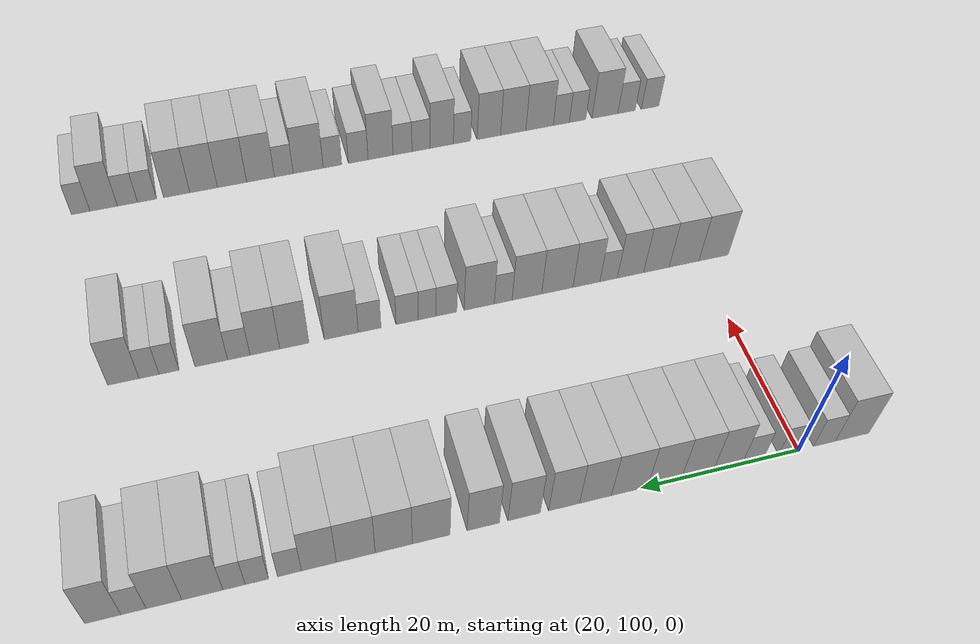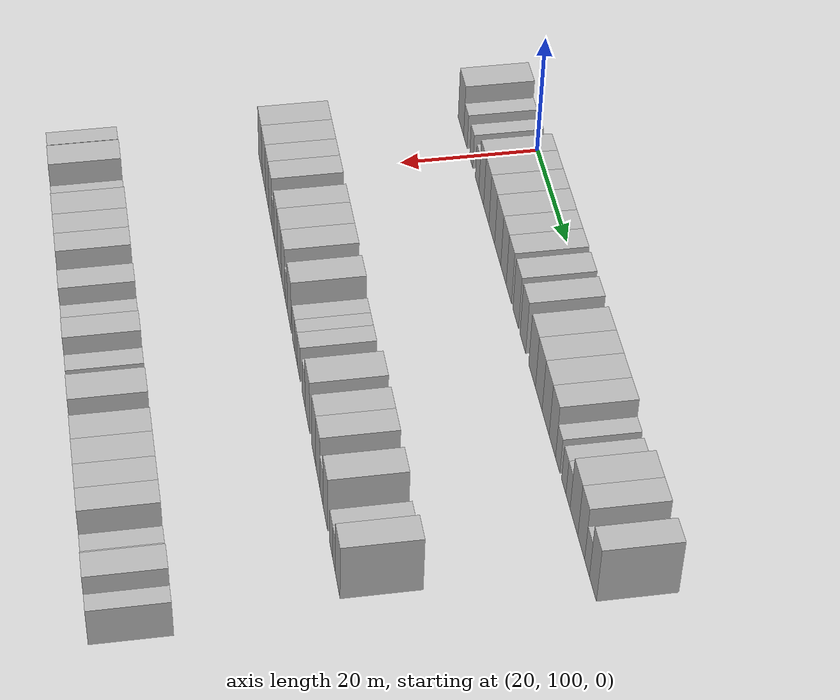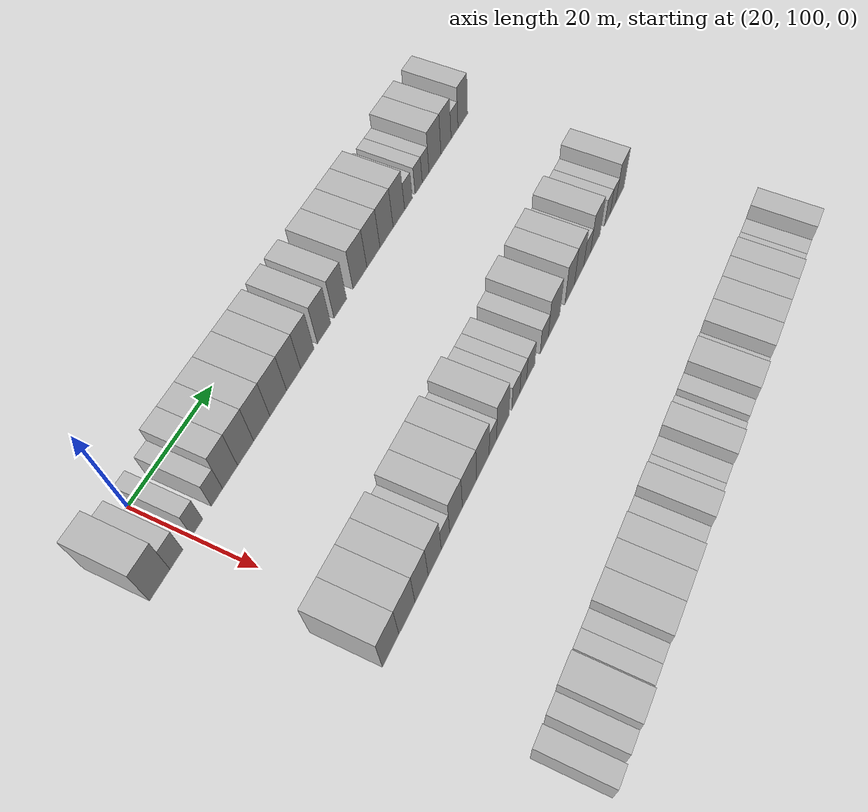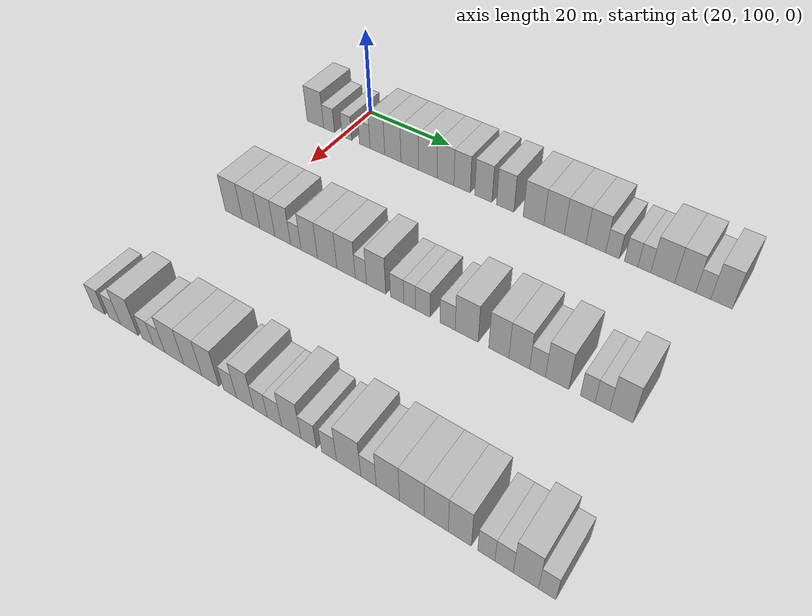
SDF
<sdf version="1.6">
 <world name="default">
  <model name="building_93">
   <static>1</static>
   <pose>25.0000 92.9762 0 0.000000 0.000000 0.000000</pose>
   <link name="link">
    <pose>0 0 4.50 0 0 0</pose>
    <collision name="collision"><geometry><box><size>10.0000 4.4435 9.0000</size></box></geometry></collision>
    <visual name="visual">
     <cast_shadows>0</cast_shadows>
     <geometry><box><size>10.0000 4.4435 9.0000</size></box></geometry>
     <material>
      <script>
       <uri>model://HANNAS_wall/materials/scripts</uri>
       <uri>model://HANNAS_wall/materials/textures</uri>
       <name>vrc/HANNAS_wall</name>
      </script>
     </material>
    </visual>
   </link>
  </model>
  <model name="building_94">
   <static>1</static>
   <pose>25.0000 96.6301 0 0.000000 0.000000 0.000000</pose>
   <link name="link">
    <pose>0 0 3.00 0 0 0</pose>
    <collision name="collision"><geometry><box><size>10.0000 2.8644 6.0000</size></box></geometry></collision>
    <visual name="visual">
     <cast_shadows>0</cast_shadows>
     <geometry><box><size>10.0000 2.8644 6.0000</size></box></geometry>
     <material>
      <script>
       <uri>model://HANNAS_wall/materials/scripts</uri>
       <uri>model://HANNAS_wall/materials/textures</uri>
       <name>vrc/HANNAS_wall</name>
      </script>
     </material>
    </visual>
   </link>
  </model>
  <model name="building_95">
   <static>1</static>
   <pose>25.0000 101.3248 0 0.000000 0.000000 0.000000</pose>
   <link name="link">
    <pose>0 0 3.00 0 0 0</pose>
    <collision name="collision"><geometry><box><size>10.0000 2.5249 6.0000</size></box></geometry></collision>
    <visual name="visual">
     <cast_shadows>0</cast_shadows>
     <geometry><box><size>10.0000 2.5249 6.0000</size></box></geometry>
     <material>
      <script>
       <uri>model://HANNAS_wall/materials/scripts</uri>
       <uri>model://HANNAS_wall/materials/textures</uri>
       <name>vrc/HANNAS_wall</name>
      </script>
     </material>
    </visual>
   </link>
  </model>
  <model name="building_96">
   <static>1</static>
   <pose>25.0000 105.9372 0 0.000000 0.000000 0.000000</pose>
   <link name="link">
    <pose>0 0 3.00 0 0 0</pose>
    <collision name="collision"><geometry><box><size>10.0000 2.7000 6.0000</size></box></geometry></collision>
    <visual name="visual">
     <cast_shadows>0</cast_shadows>
     <geometry><box><size>10.0000 2.7000 6.0000</size></box></geometry>
     <material>
      <script>
       <uri>model://HANNAS_wall/materials/scripts</uri>
       <uri>model://HANNAS_wall/materials/textures</uri>
       <name>vrc/HANNAS_wall</name>
      </script>
     </material>
    </visual>
   </link>
  </model>
  <model name="building_97">
   <static>1</static>
   <pose>25.0000 109.1324 0 0.000000 0.000000 0.000000</pose>
   <link name="link">
    <pose>0 0 4.50 0 0 0</pose>
    <collision name="collision"><geometry><box><size>10.0000 3.6905 9.0000</size></box></geometry></collision>
    <visual name="visual">
     <cast_shadows>0</cast_shadows>
     <geometry><box><size>10.0000 3.6905 9.0000</size></box></geometry>
     <material>
      <script>
       <uri>model://HANNAS_wall/materials/scripts</uri>
       <uri>model://HANNAS_wall/materials/textures</uri>
       <name>vrc/HANNAS_wall</name>
      </script>
     </material>
    </visual>
   </link>
  </model>
  <model name="building_98">
   <static>1</static>
   <pose>25.0000 112.9973 0 0.000000 0.000000 0.000000</pose>
   <link name="link">
    <pose>0 0 4.50 0 0 0</pose>
    <collision name="collision"><geometry><box><size>10.0000 4.0393 9.0000</size></box></geometry></collision>
    <visual name="visual">
     <cast_shadows>0</cast_shadows>
     <geometry><box><size>10.0000 4.0393 9.0000</size></box></geometry>
     <material>
      <script>
       <uri>model://HANNAS_wall/materials/scripts</uri>
       <uri>model://HANNAS_wall/materials/textures</uri>
       <name>vrc/HANNAS_wall</name>
      </script>
     </material>
    </visual>
   </link>
  </model>
  <model name="building_99">
   <static>1</static>
   <pose>25.0000 117.1257 0 0.000000 0.000000 0.000000</pose>
   <link name="link">
    <pose>0 0 4.50 0 0 0</pose>
    <collision name="collision"><geometry><box><size>10.0000 4.2175 9.0000</size></box></geometry></collision>
    <visual name="visual">
     <cast_shadows>0</cast_shadows>
     <geometry><box><size>10.0000 4.2175 9.0000</size></box></geometry>
     <material>
      <script>
       <uri>model://HANNAS_wall/materials/scripts</uri>
       <uri>model://HANNAS_wall/materials/textures</uri>
       <name>vrc/HANNAS_wall</name>
      </script>
     </material>
    </visual>
   </link>
  </model>
  <model name="building_100">
   <static>1</static>
   <pose>25.0000 121.4720 0 0.000000 0.000000 0.000000</pose>
   <link name="link">
    <pose>0 0 4.50 0 0 0</pose>
    <collision name="collision"><geometry><box><size>10.0000 4.4751 9.0000</size></box></geometry></collision>
    <visual name="visual">
     <cast_shadows>0</cast_shadows>
     <geometry><box><size>10.0000 4.4751 9.0000</size></box></geometry>
     <material>
      <script>
       <uri>model://HANNAS_wall/materials/scripts</uri>
       <uri>model://HANNAS_wall/materials/textures</uri>
       <name>vrc/HANNAS_wall</name>
      </script>
     </material>
    </visual>
   </link>
  </model>
  <model name="building_101">
   <static>1</static>
   <pose>25.0000 125.6551 0 0.000000 0.000000 0.000000</pose>
   <link name="link">
    <pose>0 0 4.50 0 0 0</pose>
    <collision name="collision"><geometry><box><size>10.0000 3.8912 9.0000</size></box></geometry></collision>
    <visual name="visual">
     <cast_shadows>0</cast_shadows>
     <geometry><box><size>10.0000 3.8912 9.0000</size></box></geometry>
     <material>
      <script>
       <uri>model://HANNAS_wall/materials/scripts</uri>
       <uri>model://HANNAS_wall/materials/textures</uri>
       <name>vrc/HANNAS_wall</name>
      </script>
     </material>
    </visual>
   </link>
  </model>
  <model name="building_102">
   <static>1</static>
   <pose>25.0000 129.4762 0 0.000000 0.000000 0.000000</pose>
   <link name="link">
    <pose>0 0 4.50 0 0 0</pose>
    <collision name="collision"><geometry><box><size>10.0000 3.7511 9.0000</size></box></geometry></collision>
    <visual name="visual">
     <cast_shadows>0</cast_shadows>
     <geometry><box><size>10.0000 3.7511 9.0000</size></box></geometry>
     <material>
      <script>
       <uri>model://HANNAS_wall/materials/scripts</uri>
       <uri>model://HANNAS_wall/materials/textures</uri>
       <name>vrc/HANNAS_wall</name>
      </script>
     </material>
    </visual>
   </link>
  </model>
  <model name="building_103">
   <static>1</static>
   <pose>25.0000 134.2920 0 0.000000 0.000000 0.000000</pose>
   <link name="link">
    <pose>0 0 4.50 0 0 0</pose>
    <collision name="collision"><geometry><box><size>10.0000 3.8805 9.0000</size></box></geometry></collision>
    <visual name="visual">
     <cast_shadows>0</cast_shadows>
     <geometry><box><size>10.0000 3.8805 9.0000</size></box></geometry>
     <material>
      <script>
       <uri>model://HANNAS_wall/materials/scripts</uri>
       <uri>model://HANNAS_wall/materials/textures</uri>
       <name>vrc/HANNAS_wall</name>
      </script>
     </material>
    </visual>
   </link>
  </model>
  <model name="building_104">
   <static>1</static>
   <pose>25.0000 139.1422 0 0.000000 0.000000 0.000000</pose>
   <link name="link">
    <pose>0 0 4.50 0 0 0</pose>
    <collision name="collision"><geometry><box><size>10.0000 3.8198 9.0000</size></box></geometry></collision>
    <visual name="visual">
     <cast_shadows>0</cast_shadows>
     <geometry><box><size>10.0000 3.8198 9.0000</size></box></geometry>
     <material>
      <script>
       <uri>model://HANNAS_wall/materials/scripts</uri>
       <uri>model://HANNAS_wall/materials/textures</uri>
       <name>vrc/HANNAS_wall</name>
      </script>
     </material>
    </visual>
   </link>
  </model>
  <model name="building_105">
   <static>1</static>
   <pose>25.0000 145.2479 0 0.000000 0.000000 0.000000</pose>
   <link name="link">
    <pose>0 0 4.50 0 0 0</pose>
    <collision name="collision"><geometry><box><size>10.0000 4.3916 9.0000</size></box></geometry></collision>
    <visual name="visual">
     <cast_shadows>0</cast_shadows>
     <geometry><box><size>10.0000 4.3916 9.0000</size></box></geometry>
     <material>
      <script>
       <uri>model://HANNAS_wall/materials/scripts</uri>
       <uri>model://HANNAS_wall/materials/textures</uri>
       <name>vrc/HANNAS_wall</name>
      </script>
     </material>
    </visual>
   </link>
  </model>
  <model name="building_106">
   <static>1</static>
   <pose>25.0000 149.5759 0 0.000000 0.000000 0.000000</pose>
   <link name="link">
    <pose>0 0 4.50 0 0 0</pose>
    <collision name="collision"><geometry><box><size>10.0000 4.2642 9.0000</size></box></geometry></collision>
    <visual name="visual">
     <cast_shadows>0</cast_shadows>
     <geometry><box><size>10.0000 4.2642 9.0000</size></box></geometry>
     <material>
      <script>
       <uri>model://HANNAS_wall/materials/scripts</uri>
       <uri>model://HANNAS_wall/materials/textures</uri>
       <name>vrc/HANNAS_wall</name>
      </script>
     </material>
    </visual>
   </link>
  </model>
  <model name="building_107">
   <static>1</static>
   <pose>25.0000 153.9154 0 0.000000 0.000000 0.000000</pose>
   <link name="link">
    <pose>0 0 4.50 0 0 0</pose>
    <collision name="collision"><geometry><box><size>10.0000 4.4148 9.0000</size></box></geometry></collision>
    <visual name="visual">
     <cast_shadows>0</cast_shadows>
     <geometry><box><size>10.0000 4.4148 9.0000</size></box></geometry>
     <material>
      <script>
       <uri>model://HANNAS_wall/materials/scripts</uri>
       <uri>model://HANNAS_wall/materials/textures</uri>
       <name>vrc/HANNAS_wall</name>
      </script>
     </material>
    </visual>
   </link>
  </model>
  <model name="building_108">
   <static>1</static>
   <pose>25.0000 158.0877 0 0.000000 0.000000 0.000000</pose>
   <link name="link">
    <pose>0 0 4.50 0 0 0</pose>
    <collision name="collision"><geometry><box><size>10.0000 3.9299 9.0000</size></box></geometry></collision>
    <visual name="visual">
     <cast_shadows>0</cast_shadows>
     <geometry><box><size>10.0000 3.9299 9.0000</size></box></geometry>
     <material>
      <script>
       <uri>model://HANNAS_wall/materials/scripts</uri>
       <uri>model://HANNAS_wall/materials/textures</uri>
       <name>vrc/HANNAS_wall</name>
      </script>
     </material>
    </visual>
   </link>
  </model>
  <model name="building_109">
   <static>1</static>
   <pose>25.0000 161.3929 0 0.000000 0.000000 0.000000</pose>
   <link name="link">
    <pose>0 0 3.00 0 0 0</pose>
    <collision name="collision"><geometry><box><size>10.0000 2.6804 6.0000</size></box></geometry></collision>
    <visual name="visual">
     <cast_shadows>0</cast_shadows>
     <geometry><box><size>10.0000 2.6804 6.0000</size></box></geometry>
     <material>
      <script>
       <uri>model://HANNAS_wall/materials/scripts</uri>
       <uri>model://HANNAS_wall/materials/textures</uri>
       <name>vrc/HANNAS_wall</name>
      </script>
     </material>
    </visual>
   </link>
  </model>
  <model name="building_110">
   <static>1</static>
   <pose>25.0000 165.0239 0 0.000000 0.000000 0.000000</pose>
   <link name="link">
    <pose>0 0 3.00 0 0 0</pose>
    <collision name="collision"><geometry><box><size>10.0000 2.5816 6.0000</size></box></geometry></collision>
    <visual name="visual">
     <cast_shadows>0</cast_shadows>
     <geometry><box><size>10.0000 2.5816 6.0000</size></box></geometry>
     <material>
      <script>
       <uri>model://HANNAS_wall/materials/scripts</uri>
       <uri>model://HANNAS_wall/materials/textures</uri>
       <name>vrc/HANNAS_wall</name>
      </script>
     </material>
    </visual>
   </link>
  </model>
  <model name="building_111">
   <static>1</static>
   <pose>25.0000 167.5384 0 0.000000 0.000000 0.000000</pose>
   <link name="link">
    <pose>0 0 3.00 0 0 0</pose>
    <collision name="collision"><geometry><box><size>10.0000 2.4472 6.0000</size></box></geometry></collision>
    <visual name="visual">
     <cast_shadows>0</cast_shadows>
     <geometry><box><size>10.0000 2.4472 6.0000</size></box></geometry>
     <material>
      <script>
       <uri>model://HANNAS_wall/materials/scripts</uri>
       <uri>model://HANNAS_wall/materials/textures</uri>
       <name>vrc/HANNAS_wall</name>
      </script>
     </material>
    </visual>
   </link>
  </model>
  <model name="building_112">
   <static>1</static>
   <pose>25.0000 170.9931 0 0.000000 0.000000 0.000000</pose>
   <link name="link">
    <pose>0 0 4.50 0 0 0</pose>
    <collision name="collision"><geometry><box><size>10.0000 4.4623 9.0000</size></box></geometry></collision>
    <visual name="visual">
     <cast_shadows>0</cast_shadows>
     <geometry><box><size>10.0000 4.4623 9.0000</size></box></geometry>
     <material>
      <script>
       <uri>model://HANNAS_wall/materials/scripts</uri>
       <uri>model://HANNAS_wall/materials/textures</uri>
       <name>vrc/HANNAS_wall</name>
      </script>
     </material>
    </visual>
   </link>
  </model>
  <model name="building_113">
   <static>1</static>
   <pose>25.0000 175.1506 0 0.000000 0.000000 0.000000</pose>
   <link name="link">
    <pose>0 0 4.50 0 0 0</pose>
    <collision name="collision"><geometry><box><size>10.0000 3.8525 9.0000</size></box></geometry></collision>
    <visual name="visual">
     <cast_shadows>0</cast_shadows>
     <geometry><box><size>10.0000 3.8525 9.0000</size></box></geometry>
     <material>
      <script>
       <uri>model://HANNAS_wall/materials/scripts</uri>
       <uri>model://HANNAS_wall/materials/textures</uri>
       <name>vrc/HANNAS_wall</name>
      </script>
     </material>
    </visual>
   </link>
  </model>
  <model name="building_114">
   <static>1</static>
   <pose>25.0000 178.4224 0 0.000000 0.000000 0.000000</pose>
   <link name="link">
    <pose>0 0 3.00 0 0 0</pose>
    <collision name="collision"><geometry><box><size>10.0000 2.6910 6.0000</size></box></geometry></collision>
    <visual name="visual">
     <cast_shadows>0</cast_shadows>
     <geometry><box><size>10.0000 2.6910 6.0000</size></box></geometry>
     <material>
      <script>
       <uri>model://HANNAS_wall/materials/scripts</uri>
       <uri>model://HANNAS_wall/materials/textures</uri>
       <name>vrc/HANNAS_wall</name>
      </script>
     </material>
    </visual>
   </link>
  </model>
  <model name="building_115">
   <static>1</static>
   <pose>25.0000 181.6834 0 0.000000 0.000000 0.000000</pose>
   <link name="link">
    <pose>0 0 4.50 0 0 0</pose>
    <collision name="collision"><geometry><box><size>10.0000 3.8310 9.0000</size></box></geometry></collision>
    <visual name="visual">
     <cast_shadows>0</cast_shadows>
     <geometry><box><size>10.0000 3.8310 9.0000</size></box></geometry>
     <material>
      <script>
       <uri>model://HANNAS_wall/materials/scripts</uri>
       <uri>model://HANNAS_wall/materials/textures</uri>
       <name>vrc/HANNAS_wall</name>
      </script>
     </material>
    </visual>
   </link>
  </model>
  <model name="building_229">
   <static>1</static>
   <pose>55.0000 97.7375 0 0.000000 0.000000 0.000000</pose>
   <link name="link">
    <pose>0 0 4.50 0 0 0</pose>
    <collision name="collision"><geometry><box><size>10.0000 4.2861 9.0000</size></box></geometry></collision>
    <visual name="visual">
     <cast_shadows>0</cast_shadows>
     <geometry><box><size>10.0000 4.2861 9.0000</size></box></geometry>
     <material>
      <script>
       <uri>model://HANNAS_wall/materials/scripts</uri>
       <uri>model://HANNAS_wall/materials/textures</uri>
       <name>vrc/HANNAS_wall</name>
      </script>
     </material>
    </visual>
   </link>
  </model>
  <model name="building_230">
   <static>1</static>
   <pose>55.0000 102.0492 0 0.000000 0.000000 0.000000</pose>
   <link name="link">
    <pose>0 0 4.50 0 0 0</pose>
    <collision name="collision"><geometry><box><size>10.0000 4.3373 9.0000</size></box></geometry></collision>
    <visual name="visual">
     <cast_shadows>0</cast_shadows>
     <geometry><box><size>10.0000 4.3373 9.0000</size></box></geometry>
     <material>
      <script>
       <uri>model://HANNAS_wall/materials/scripts</uri>
       <uri>model://HANNAS_wall/materials/textures</uri>
       <name>vrc/HANNAS_wall</name>
      </script>
     </material>
    </visual>
   </link>
  </model>
  <model name="building_231">
   <static>1</static>
   <pose>55.0000 106.0532 0 0.000000 0.000000 0.000000</pose>
   <link name="link">
    <pose>0 0 4.50 0 0 0</pose>
    <collision name="collision"><geometry><box><size>10.0000 3.6707 9.0000</size></box></geometry></collision>
    <visual name="visual">
     <cast_shadows>0</cast_shadows>
     <geometry><box><size>10.0000 3.6707 9.0000</size></box></geometry>
     <material>
      <script>
       <uri>model://HANNAS_wall/materials/scripts</uri>
       <uri>model://HANNAS_wall/materials/textures</uri>
       <name>vrc/HANNAS_wall</name>
      </script>
     </material>
    </visual>
   </link>
  </model>
  <model name="building_232">
   <static>1</static>
   <pose>55.0000 109.7689 0 0.000000 0.000000 0.000000</pose>
   <link name="link">
    <pose>0 0 4.50 0 0 0</pose>
    <collision name="collision"><geometry><box><size>10.0000 3.7606 9.0000</size></box></geometry></collision>
    <visual name="visual">
     <cast_shadows>0</cast_shadows>
     <geometry><box><size>10.0000 3.7606 9.0000</size></box></geometry>
     <material>
      <script>
       <uri>model://HANNAS_wall/materials/scripts</uri>
       <uri>model://HANNAS_wall/materials/textures</uri>
       <name>vrc/HANNAS_wall</name>
      </script>
     </material>
    </visual>
   </link>
  </model>
  <model name="building_233">
   <static>1</static>
   <pose>55.0000 112.8867 0 0.000000 0.000000 0.000000</pose>
   <link name="link">
    <pose>0 0 3.00 0 0 0</pose>
    <collision name="collision"><geometry><box><size>10.0000 2.4750 6.0000</size></box></geometry></collision>
    <visual name="visual">
     <cast_shadows>0</cast_shadows>
     <geometry><box><size>10.0000 2.4750 6.0000</size></box></geometry>
     <material>
      <script>
       <uri>model://HANNAS_wall/materials/scripts</uri>
       <uri>model://HANNAS_wall/materials/textures</uri>
       <name>vrc/HANNAS_wall</name>
      </script>
     </material>
    </visual>
   </link>
  </model>
  <model name="building_234">
   <static>1</static>
   <pose>55.0000 116.0268 0 0.000000 0.000000 0.000000</pose>
   <link name="link">
    <pose>0 0 4.50 0 0 0</pose>
    <collision name="collision"><geometry><box><size>10.0000 3.8050 9.0000</size></box></geometry></collision>
    <visual name="visual">
     <cast_shadows>0</cast_shadows>
     <geometry><box><size>10.0000 3.8050 9.0000</size></box></geometry>
     <material>
      <script>
       <uri>model://HANNAS_wall/materials/scripts</uri>
       <uri>model://HANNAS_wall/materials/textures</uri>
       <name>vrc/HANNAS_wall</name>
      </script>
     </material>
    </visual>
   </link>
  </model>
  <model name="building_235">
   <static>1</static>
   <pose>55.0000 120.1198 0 0.000000 0.000000 0.000000</pose>
   <link name="link">
    <pose>0 0 4.50 0 0 0</pose>
    <collision name="collision"><geometry><box><size>10.0000 4.3811 9.0000</size></box></geometry></collision>
    <visual name="visual">
     <cast_shadows>0</cast_shadows>
     <geometry><box><size>10.0000 4.3811 9.0000</size></box></geometry>
     <material>
      <script>
       <uri>model://HANNAS_wall/materials/scripts</uri>
       <uri>model://HANNAS_wall/materials/textures</uri>
       <name>vrc/HANNAS_wall</name>
      </script>
     </material>
    </visual>
   </link>
  </model>
  <model name="building_236">
   <static>1</static>
   <pose>55.0000 124.3511 0 0.000000 0.000000 0.000000</pose>
   <link name="link">
    <pose>0 0 4.50 0 0 0</pose>
    <collision name="collision"><geometry><box><size>10.0000 4.0815 9.0000</size></box></geometry></collision>
    <visual name="visual">
     <cast_shadows>0</cast_shadows>
     <geometry><box><size>10.0000 4.0815 9.0000</size></box></geometry>
     <material>
      <script>
       <uri>model://HANNAS_wall/materials/scripts</uri>
       <uri>model://HANNAS_wall/materials/textures</uri>
       <name>vrc/HANNAS_wall</name>
      </script>
     </material>
    </visual>
   </link>
  </model>
  <model name="building_237">
   <static>1</static>
   <pose>55.0000 127.6216 0 0.000000 0.000000 0.000000</pose>
   <link name="link">
    <pose>0 0 3.00 0 0 0</pose>
    <collision name="collision"><geometry><box><size>10.0000 2.4594 6.0000</size></box></geometry></collision>
    <visual name="visual">
     <cast_shadows>0</cast_shadows>
     <geometry><box><size>10.0000 2.4594 6.0000</size></box></geometry>
     <material>
      <script>
       <uri>model://HANNAS_wall/materials/scripts</uri>
       <uri>model://HANNAS_wall/materials/textures</uri>
       <name>vrc/HANNAS_wall</name>
      </script>
     </material>
    </visual>
   </link>
  </model>
  <model name="building_238">
   <static>1</static>
   <pose>55.0000 130.9098 0 0.000000 0.000000 0.000000</pose>
   <link name="link">
    <pose>0 0 4.50 0 0 0</pose>
    <collision name="collision"><geometry><box><size>10.0000 4.1169 9.0000</size></box></geometry></collision>
    <visual name="visual">
     <cast_shadows>0</cast_shadows>
     <geometry><box><size>10.0000 4.1169 9.0000</size></box></geometry>
     <material>
      <script>
       <uri>model://HANNAS_wall/materials/scripts</uri>
       <uri>model://HANNAS_wall/materials/textures</uri>
       <name>vrc/HANNAS_wall</name>
      </script>
     </material>
    </visual>
   </link>
  </model>
  <model name="building_239">
   <static>1</static>
   <pose>55.0000 135.3643 0 0.000000 0.000000 0.000000</pose>
   <link name="link">
    <pose>0 0 3.00 0 0 0</pose>
    <collision name="collision"><geometry><box><size>10.0000 2.7922 6.0000</size></box></geometry></collision>
    <visual name="visual">
     <cast_shadows>0</cast_shadows>
     <geometry><box><size>10.0000 2.7922 6.0000</size></box></geometry>
     <material>
      <script>
       <uri>model://HANNAS_wall/materials/scripts</uri>
       <uri>model://HANNAS_wall/materials/textures</uri>
       <name>vrc/HANNAS_wall</name>
      </script>
     </material>
    </visual>
   </link>
  </model>
  <model name="building_240">
   <static>1</static>
   <pose>55.0000 137.9626 0 0.000000 0.000000 0.000000</pose>
   <link name="link">
    <pose>0 0 3.00 0 0 0</pose>
    <collision name="collision"><geometry><box><size>10.0000 2.4044 6.0000</size></box></geometry></collision>
    <visual name="visual">
     <cast_shadows>0</cast_shadows>
     <geometry><box><size>10.0000 2.4044 6.0000</size></box></geometry>
     <material>
      <script>
       <uri>model://HANNAS_wall/materials/scripts</uri>
       <uri>model://HANNAS_wall/materials/textures</uri>
       <name>vrc/HANNAS_wall</name>
      </script>
     </material>
    </visual>
   </link>
  </model>
  <model name="building_241">
   <static>1</static>
   <pose>55.0000 140.6486 0 0.000000 0.000000 0.000000</pose>
   <link name="link">
    <pose>0 0 3.00 0 0 0</pose>
    <collision name="collision"><geometry><box><size>10.0000 2.9677 6.0000</size></box></geometry></collision>
    <visual name="visual">
     <cast_shadows>0</cast_shadows>
     <geometry><box><size>10.0000 2.9677 6.0000</size></box></geometry>
     <material>
      <script>
       <uri>model://HANNAS_wall/materials/scripts</uri>
       <uri>model://HANNAS_wall/materials/textures</uri>
       <name>vrc/HANNAS_wall</name>
      </script>
     </material>
    </visual>
   </link>
  </model>
  <model name="building_242">
   <static>1</static>
   <pose>55.0000 145.6291 0 0.000000 0.000000 0.000000</pose>
   <link name="link">
    <pose>0 0 3.00 0 0 0</pose>
    <collision name="collision"><geometry><box><size>10.0000 2.9932 6.0000</size></box></geometry></collision>
    <visual name="visual">
     <cast_shadows>0</cast_shadows>
     <geometry><box><size>10.0000 2.9932 6.0000</size></box></geometry>
     <material>
      <script>
       <uri>model://HANNAS_wall/materials/scripts</uri>
       <uri>model://HANNAS_wall/materials/textures</uri>
       <name>vrc/HANNAS_wall</name>
      </script>
     </material>
    </visual>
   </link>
  </model>
  <model name="building_243">
   <static>1</static>
   <pose>55.0000 149.3579 0 0.000000 0.000000 0.000000</pose>
   <link name="link">
    <pose>0 0 4.50 0 0 0</pose>
    <collision name="collision"><geometry><box><size>10.0000 4.4644 9.0000</size></box></geometry></collision>
    <visual name="visual">
     <cast_shadows>0</cast_shadows>
     <geometry><box><size>10.0000 4.4644 9.0000</size></box></geometry>
     <material>
      <script>
       <uri>model://HANNAS_wall/materials/scripts</uri>
       <uri>model://HANNAS_wall/materials/textures</uri>
       <name>vrc/HANNAS_wall</name>
      </script>
     </material>
    </visual>
   </link>
  </model>
  <model name="building_244">
   <static>1</static>
   <pose>55.0000 155.4737 0 0.000000 0.000000 0.000000</pose>
   <link name="link">
    <pose>0 0 4.50 0 0 0</pose>
    <collision name="collision"><geometry><box><size>10.0000 3.7672 9.0000</size></box></geometry></collision>
    <visual name="visual">
     <cast_shadows>0</cast_shadows>
     <geometry><box><size>10.0000 3.7672 9.0000</size></box></geometry>
     <material>
      <script>
       <uri>model://HANNAS_wall/materials/scripts</uri>
       <uri>model://HANNAS_wall/materials/textures</uri>
       <name>vrc/HANNAS_wall</name>
      </script>
     </material>
    </visual>
   </link>
  </model>
  <model name="building_245">
   <static>1</static>
   <pose>55.0000 159.2653 0 0.000000 0.000000 0.000000</pose>
   <link name="link">
    <pose>0 0 4.50 0 0 0</pose>
    <collision name="collision"><geometry><box><size>10.0000 3.8160 9.0000</size></box></geometry></collision>
    <visual name="visual">
     <cast_shadows>0</cast_shadows>
     <geometry><box><size>10.0000 3.8160 9.0000</size></box></geometry>
     <material>
      <script>
       <uri>model://HANNAS_wall/materials/scripts</uri>
       <uri>model://HANNAS_wall/materials/textures</uri>
       <name>vrc/HANNAS_wall</name>
      </script>
     </material>
    </visual>
   </link>
  </model>
  <model name="building_246">
   <static>1</static>
   <pose>55.0000 162.6020 0 0.000000 0.000000 0.000000</pose>
   <link name="link">
    <pose>0 0 3.00 0 0 0</pose>
    <collision name="collision"><geometry><box><size>10.0000 2.8575 6.0000</size></box></geometry></collision>
    <visual name="visual">
     <cast_shadows>0</cast_shadows>
     <geometry><box><size>10.0000 2.8575 6.0000</size></box></geometry>
     <material>
      <script>
       <uri>model://HANNAS_wall/materials/scripts</uri>
       <uri>model://HANNAS_wall/materials/textures</uri>
       <name>vrc/HANNAS_wall</name>
      </script>
     </material>
    </visual>
   </link>
  </model>
  <model name="building_247">
   <static>1</static>
   <pose>55.0000 166.0939 0 0.000000 0.000000 0.000000</pose>
   <link name="link">
    <pose>0 0 4.50 0 0 0</pose>
    <collision name="collision"><geometry><box><size>10.0000 4.1264 9.0000</size></box></geometry></collision>
    <visual name="visual">
     <cast_shadows>0</cast_shadows>
     <geometry><box><size>10.0000 4.1264 9.0000</size></box></geometry>
     <material>
      <script>
       <uri>model://HANNAS_wall/materials/scripts</uri>
       <uri>model://HANNAS_wall/materials/textures</uri>
       <name>vrc/HANNAS_wall</name>
      </script>
     </material>
    </visual>
   </link>
  </model>
  <model name="building_248">
   <static>1</static>
   <pose>55.0000 171.3934 0 0.000000 0.000000 0.000000</pose>
   <link name="link">
    <pose>0 0 3.00 0 0 0</pose>
    <collision name="collision"><geometry><box><size>10.0000 2.4725 6.0000</size></box></geometry></collision>
    <visual name="visual">
     <cast_shadows>0</cast_shadows>
     <geometry><box><size>10.0000 2.4725 6.0000</size></box></geometry>
     <material>
      <script>
       <uri>model://HANNAS_wall/materials/scripts</uri>
       <uri>model://HANNAS_wall/materials/textures</uri>
       <name>vrc/HANNAS_wall</name>
      </script>
     </material>
    </visual>
   </link>
  </model>
  <model name="building_249">
   <static>1</static>
   <pose>55.0000 173.8774 0 0.000000 0.000000 0.000000</pose>
   <link name="link">
    <pose>0 0 3.00 0 0 0</pose>
    <collision name="collision"><geometry><box><size>10.0000 2.4954 6.0000</size></box></geometry></collision>
    <visual name="visual">
     <cast_shadows>0</cast_shadows>
     <geometry><box><size>10.0000 2.4954 6.0000</size></box></geometry>
     <material>
      <script>
       <uri>model://HANNAS_wall/materials/scripts</uri>
       <uri>model://HANNAS_wall/materials/textures</uri>
       <name>vrc/HANNAS_wall</name>
      </script>
     </material>
    </visual>
   </link>
  </model>
  <model name="building_250">
   <static>1</static>
   <pose>55.0000 177.0618 0 0.000000 0.000000 0.000000</pose>
   <link name="link">
    <pose>0 0 4.50 0 0 0</pose>
    <collision name="collision"><geometry><box><size>10.0000 3.8735 9.0000</size></box></geometry></collision>
    <visual name="visual">
     <cast_shadows>0</cast_shadows>
     <geometry><box><size>10.0000 3.8735 9.0000</size></box></geometry>
     <material>
      <script>
       <uri>model://HANNAS_wall/materials/scripts</uri>
       <uri>model://HANNAS_wall/materials/textures</uri>
       <name>vrc/HANNAS_wall</name>
      </script>
     </material>
    </visual>
   </link>
  </model>
  <model name="building_364">
   <static>1</static>
   <pose>85.0000 94.9974 0 0.000000 0.000000 0.000000</pose>
   <link name="link">
    <pose>0 0 3.00 0 0 0</pose>
    <collision name="collision"><geometry><box><size>10.0000 2.8521 6.0000</size></box></geometry></collision>
    <visual name="visual">
     <cast_shadows>0</cast_shadows>
     <geometry><box><size>10.0000 2.8521 6.0000</size></box></geometry>
     <material>
      <script>
       <uri>model://HANNAS_wall/materials/scripts</uri>
       <uri>model://HANNAS_wall/materials/textures</uri>
       <name>vrc/HANNAS_wall</name>
      </script>
     </material>
    </visual>
   </link>
  </model>
  <model name="building_365">
   <static>1</static>
   <pose>85.0000 98.8276 0 0.000000 0.000000 0.000000</pose>
   <link name="link">
    <pose>0 0 3.00 0 0 0</pose>
    <collision name="collision"><geometry><box><size>10.0000 2.8084 6.0000</size></box></geometry></collision>
    <visual name="visual">
     <cast_shadows>0</cast_shadows>
     <geometry><box><size>10.0000 2.8084 6.0000</size></box></geometry>
     <material>
      <script>
       <uri>model://HANNAS_wall/materials/scripts</uri>
       <uri>model://HANNAS_wall/materials/textures</uri>
       <name>vrc/HANNAS_wall</name>
      </script>
     </material>
    </visual>
   </link>
  </model>
  <model name="building_366">
   <static>1</static>
   <pose>85.0000 102.3179 0 0.000000 0.000000 0.000000</pose>
   <link name="link">
    <pose>0 0 4.50 0 0 0</pose>
    <collision name="collision"><geometry><box><size>10.0000 4.1724 9.0000</size></box></geometry></collision>
    <visual name="visual">
     <cast_shadows>0</cast_shadows>
     <geometry><box><size>10.0000 4.1724 9.0000</size></box></geometry>
     <material>
      <script>
       <uri>model://HANNAS_wall/materials/scripts</uri>
       <uri>model://HANNAS_wall/materials/textures</uri>
       <name>vrc/HANNAS_wall</name>
      </script>
     </material>
    </visual>
   </link>
  </model>
  <model name="building_367">
   <static>1</static>
   <pose>85.0000 106.7169 0 0.000000 0.000000 0.000000</pose>
   <link name="link">
    <pose>0 0 3.00 0 0 0</pose>
    <collision name="collision"><geometry><box><size>10.0000 2.6255 6.0000</size></box></geometry></collision>
    <visual name="visual">
     <cast_shadows>0</cast_shadows>
     <geometry><box><size>10.0000 2.6255 6.0000</size></box></geometry>
     <material>
      <script>
       <uri>model://HANNAS_wall/materials/scripts</uri>
       <uri>model://HANNAS_wall/materials/textures</uri>
       <name>vrc/HANNAS_wall</name>
      </script>
     </material>
    </visual>
   </link>
  </model>
  <model name="building_368">
   <static>1</static>
   <pose>85.0000 109.3009 0 0.000000 0.000000 0.000000</pose>
   <link name="link">
    <pose>0 0 3.00 0 0 0</pose>
    <collision name="collision"><geometry><box><size>10.0000 2.5425 6.0000</size></box></geometry></collision>
    <visual name="visual">
     <cast_shadows>0</cast_shadows>
     <geometry><box><size>10.0000 2.5425 6.0000</size></box></geometry>
     <material>
      <script>
       <uri>model://HANNAS_wall/materials/scripts</uri>
       <uri>model://HANNAS_wall/materials/textures</uri>
       <name>vrc/HANNAS_wall</name>
      </script>
     </material>
    </visual>
   </link>
  </model>
  <model name="building_369">
   <static>1</static>
   <pose>85.0000 112.7446 0 0.000000 0.000000 0.000000</pose>
   <link name="link">
    <pose>0 0 4.50 0 0 0</pose>
    <collision name="collision"><geometry><box><size>10.0000 4.3448 9.0000</size></box></geometry></collision>
    <visual name="visual">
     <cast_shadows>0</cast_shadows>
     <geometry><box><size>10.0000 4.3448 9.0000</size></box></geometry>
     <material>
      <script>
       <uri>model://HANNAS_wall/materials/scripts</uri>
       <uri>model://HANNAS_wall/materials/textures</uri>
       <name>vrc/HANNAS_wall</name>
      </script>
     </material>
    </visual>
   </link>
  </model>
  <model name="building_370">
   <static>1</static>
   <pose>85.0000 116.8939 0 0.000000 0.000000 0.000000</pose>
   <link name="link">
    <pose>0 0 4.50 0 0 0</pose>
    <collision name="collision"><geometry><box><size>10.0000 3.9539 9.0000</size></box></geometry></collision>
    <visual name="visual">
     <cast_shadows>0</cast_shadows>
     <geometry><box><size>10.0000 3.9539 9.0000</size></box></geometry>
     <material>
      <script>
       <uri>model://HANNAS_wall/materials/scripts</uri>
       <uri>model://HANNAS_wall/materials/textures</uri>
       <name>vrc/HANNAS_wall</name>
      </script>
     </material>
    </visual>
   </link>
  </model>
  <model name="building_371">
   <static>1</static>
   <pose>85.0000 120.6959 0 0.000000 0.000000 0.000000</pose>
   <link name="link">
    <pose>0 0 4.50 0 0 0</pose>
    <collision name="collision"><geometry><box><size>10.0000 3.6501 9.0000</size></box></geometry></collision>
    <visual name="visual">
     <cast_shadows>0</cast_shadows>
     <geometry><box><size>10.0000 3.6501 9.0000</size></box></geometry>
     <material>
      <script>
       <uri>model://HANNAS_wall/materials/scripts</uri>
       <uri>model://HANNAS_wall/materials/textures</uri>
       <name>vrc/HANNAS_wall</name>
      </script>
     </material>
    </visual>
   </link>
  </model>
  <model name="building_372">
   <static>1</static>
   <pose>85.0000 124.8593 0 0.000000 0.000000 0.000000</pose>
   <link name="link">
    <pose>0 0 3.00 0 0 0</pose>
    <collision name="collision"><geometry><box><size>10.0000 2.6767 6.0000</size></box></geometry></collision>
    <visual name="visual">
     <cast_shadows>0</cast_shadows>
     <geometry><box><size>10.0000 2.6767 6.0000</size></box></geometry>
     <material>
      <script>
       <uri>model://HANNAS_wall/materials/scripts</uri>
       <uri>model://HANNAS_wall/materials/textures</uri>
       <name>vrc/HANNAS_wall</name>
      </script>
     </material>
    </visual>
   </link>
  </model>
  <model name="building_373">
   <static>1</static>
   <pose>85.0000 128.0033 0 0.000000 0.000000 0.000000</pose>
   <link name="link">
    <pose>0 0 4.50 0 0 0</pose>
    <collision name="collision"><geometry><box><size>10.0000 3.6112 9.0000</size></box></geometry></collision>
    <visual name="visual">
     <cast_shadows>0</cast_shadows>
     <geometry><box><size>10.0000 3.6112 9.0000</size></box></geometry>
     <material>
      <script>
       <uri>model://HANNAS_wall/materials/scripts</uri>
       <uri>model://HANNAS_wall/materials/textures</uri>
       <name>vrc/HANNAS_wall</name>
      </script>
     </material>
    </visual>
   </link>
  </model>
  <model name="building_374">
   <static>1</static>
   <pose>85.0000 131.1669 0 0.000000 0.000000 0.000000</pose>
   <link name="link">
    <pose>0 0 3.00 0 0 0</pose>
    <collision name="collision"><geometry><box><size>10.0000 2.7159 6.0000</size></box></geometry></collision>
    <visual name="visual">
     <cast_shadows>0</cast_shadows>
     <geometry><box><size>10.0000 2.7159 6.0000</size></box></geometry>
     <material>
      <script>
       <uri>model://HANNAS_wall/materials/scripts</uri>
       <uri>model://HANNAS_wall/materials/textures</uri>
       <name>vrc/HANNAS_wall</name>
      </script>
     </material>
    </visual>
   </link>
  </model>
  <model name="building_375">
   <static>1</static>
   <pose>85.0000 133.9659 0 0.000000 0.000000 0.000000</pose>
   <link name="link">
    <pose>0 0 3.00 0 0 0</pose>
    <collision name="collision"><geometry><box><size>10.0000 2.8822 6.0000</size></box></geometry></collision>
    <visual name="visual">
     <cast_shadows>0</cast_shadows>
     <geometry><box><size>10.0000 2.8822 6.0000</size></box></geometry>
     <material>
      <script>
       <uri>model://HANNAS_wall/materials/scripts</uri>
       <uri>model://HANNAS_wall/materials/textures</uri>
       <name>vrc/HANNAS_wall</name>
      </script>
     </material>
    </visual>
   </link>
  </model>
  <model name="building_376">
   <static>1</static>
   <pose>85.0000 137.2857 0 0.000000 0.000000 0.000000</pose>
   <link name="link">
    <pose>0 0 4.50 0 0 0</pose>
    <collision name="collision"><geometry><box><size>10.0000 3.7575 9.0000</size></box></geometry></collision>
    <visual name="visual">
     <cast_shadows>0</cast_shadows>
     <geometry><box><size>10.0000 3.7575 9.0000</size></box></geometry>
     <material>
      <script>
       <uri>model://HANNAS_wall/materials/scripts</uri>
       <uri>model://HANNAS_wall/materials/textures</uri>
       <name>vrc/HANNAS_wall</name>
      </script>
     </material>
    </visual>
   </link>
  </model>
  <model name="building_377">
   <static>1</static>
   <pose>85.0000 140.6296 0 0.000000 0.000000 0.000000</pose>
   <link name="link">
    <pose>0 0 3.00 0 0 0</pose>
    <collision name="collision"><geometry><box><size>10.0000 2.9302 6.0000</size></box></geometry></collision>
    <visual name="visual">
     <cast_shadows>0</cast_shadows>
     <geometry><box><size>10.0000 2.9302 6.0000</size></box></geometry>
     <material>
      <script>
       <uri>model://HANNAS_wall/materials/scripts</uri>
       <uri>model://HANNAS_wall/materials/textures</uri>
       <name>vrc/HANNAS_wall</name>
      </script>
     </material>
    </visual>
   </link>
  </model>
  <model name="building_378">
   <static>1</static>
   <pose>85.0000 144.4677 0 0.000000 0.000000 0.000000</pose>
   <link name="link">
    <pose>0 0 3.00 0 0 0</pose>
    <collision name="collision"><geometry><box><size>10.0000 2.7459 6.0000</size></box></geometry></collision>
    <visual name="visual">
     <cast_shadows>0</cast_shadows>
     <geometry><box><size>10.0000 2.7459 6.0000</size></box></geometry>
     <material>
      <script>
       <uri>model://HANNAS_wall/materials/scripts</uri>
       <uri>model://HANNAS_wall/materials/textures</uri>
       <name>vrc/HANNAS_wall</name>
      </script>
     </material>
    </visual>
   </link>
  </model>
  <model name="building_379">
   <static>1</static>
   <pose>85.0000 148.0576 0 0.000000 0.000000 0.000000</pose>
   <link name="link">
    <pose>0 0 4.50 0 0 0</pose>
    <collision name="collision"><geometry><box><size>10.0000 4.4340 9.0000</size></box></geometry></collision>
    <visual name="visual">
     <cast_shadows>0</cast_shadows>
     <geometry><box><size>10.0000 4.4340 9.0000</size></box></geometry>
     <material>
      <script>
       <uri>model://HANNAS_wall/materials/scripts</uri>
       <uri>model://HANNAS_wall/materials/textures</uri>
       <name>vrc/HANNAS_wall</name>
      </script>
     </material>
    </visual>
   </link>
  </model>
  <model name="building_380">
   <static>1</static>
   <pose>85.0000 151.6483 0 0.000000 0.000000 0.000000</pose>
   <link name="link">
    <pose>0 0 3.00 0 0 0</pose>
    <collision name="collision"><geometry><box><size>10.0000 2.7475 6.0000</size></box></geometry></collision>
    <visual name="visual">
     <cast_shadows>0</cast_shadows>
     <geometry><box><size>10.0000 2.7475 6.0000</size></box></geometry>
     <material>
      <script>
       <uri>model://HANNAS_wall/materials/scripts</uri>
       <uri>model://HANNAS_wall/materials/textures</uri>
       <name>vrc/HANNAS_wall</name>
      </script>
     </material>
    </visual>
   </link>
  </model>
  <model name="building_381">
   <static>1</static>
   <pose>85.0000 155.0428 0 0.000000 0.000000 0.000000</pose>
   <link name="link">
    <pose>0 0 4.50 0 0 0</pose>
    <collision name="collision"><geometry><box><size>10.0000 4.0415 9.0000</size></box></geometry></collision>
    <visual name="visual">
     <cast_shadows>0</cast_shadows>
     <geometry><box><size>10.0000 4.0415 9.0000</size></box></geometry>
     <material>
      <script>
       <uri>model://HANNAS_wall/materials/scripts</uri>
       <uri>model://HANNAS_wall/materials/textures</uri>
       <name>vrc/HANNAS_wall</name>
      </script>
     </material>
    </visual>
   </link>
  </model>
  <model name="building_382">
   <static>1</static>
   <pose>85.0000 159.1726 0 0.000000 0.000000 0.000000</pose>
   <link name="link">
    <pose>0 0 4.50 0 0 0</pose>
    <collision name="collision"><geometry><box><size>10.0000 4.2181 9.0000</size></box></geometry></collision>
    <visual name="visual">
     <cast_shadows>0</cast_shadows>
     <geometry><box><size>10.0000 4.2181 9.0000</size></box></geometry>
     <material>
      <script>
       <uri>model://HANNAS_wall/materials/scripts</uri>
       <uri>model://HANNAS_wall/materials/textures</uri>
       <name>vrc/HANNAS_wall</name>
      </script>
     </material>
    </visual>
   </link>
  </model>
  <model name="building_383">
   <static>1</static>
   <pose>85.0000 163.2561 0 0.000000 0.000000 0.000000</pose>
   <link name="link">
    <pose>0 0 4.50 0 0 0</pose>
    <collision name="collision"><geometry><box><size>10.0000 3.9488 9.0000</size></box></geometry></collision>
    <visual name="visual">
     <cast_shadows>0</cast_shadows>
     <geometry><box><size>10.0000 3.9488 9.0000</size></box></geometry>
     <material>
      <script>
       <uri>model://HANNAS_wall/materials/scripts</uri>
       <uri>model://HANNAS_wall/materials/textures</uri>
       <name>vrc/HANNAS_wall</name>
      </script>
     </material>
    </visual>
   </link>
  </model>
  <model name="building_384">
   <static>1</static>
   <pose>85.0000 167.0928 0 0.000000 0.000000 0.000000</pose>
   <link name="link">
    <pose>0 0 4.50 0 0 0</pose>
    <collision name="collision"><geometry><box><size>10.0000 3.7245 9.0000</size></box></geometry></collision>
    <visual name="visual">
     <cast_shadows>0</cast_shadows>
     <geometry><box><size>10.0000 3.7245 9.0000</size></box></geometry>
     <material>
      <script>
       <uri>model://HANNAS_wall/materials/scripts</uri>
       <uri>model://HANNAS_wall/materials/textures</uri>
       <name>vrc/HANNAS_wall</name>
      </script>
     </material>
    </visual>
   </link>
  </model>
  <model name="building_385">
   <static>1</static>
   <pose>85.0000 171.2929 0 0.000000 0.000000 0.000000</pose>
   <link name="link">
    <pose>0 0 3.00 0 0 0</pose>
    <collision name="collision"><geometry><box><size>10.0000 2.6757 6.0000</size></box></geometry></collision>
    <visual name="visual">
     <cast_shadows>0</cast_shadows>
     <geometry><box><size>10.0000 2.6757 6.0000</size></box></geometry>
     <material>
      <script>
       <uri>model://HANNAS_wall/materials/scripts</uri>
       <uri>model://HANNAS_wall/materials/textures</uri>
       <name>vrc/HANNAS_wall</name>
      </script>
     </material>
    </visual>
   </link>
  </model>
  <model name="building_386">
   <static>1</static>
   <pose>85.0000 174.0431 0 0.000000 0.000000 0.000000</pose>
   <link name="link">
    <pose>0 0 3.00 0 0 0</pose>
    <collision name="collision"><geometry><box><size>10.0000 2.8249 6.0000</size></box></geometry></collision>
    <visual name="visual">
     <cast_shadows>0</cast_shadows>
     <geometry><box><size>10.0000 2.8249 6.0000</size></box></geometry>
     <material>
      <script>
       <uri>model://HANNAS_wall/materials/scripts</uri>
       <uri>model://HANNAS_wall/materials/textures</uri>
       <name>vrc/HANNAS_wall</name>
      </script>
     </material>
    </visual>
   </link>
  </model>
  <model name="building_387">
   <static>1</static>
   <pose>85.0000 177.3525 0 0.000000 0.000000 0.000000</pose>
   <link name="link">
    <pose>0 0 4.50 0 0 0</pose>
    <collision name="collision"><geometry><box><size>10.0000 3.7939 9.0000</size></box></geometry></collision>
    <visual name="visual">
     <cast_shadows>0</cast_shadows>
     <geometry><box><size>10.0000 3.7939 9.0000</size></box></geometry>
     <material>
      <script>
       <uri>model://HANNAS_wall/materials/scripts</uri>
       <uri>model://HANNAS_wall/materials/textures</uri>
       <name>vrc/HANNAS_wall</name>
      </script>
     </material>
    </visual>
   </link>
  </model>
  <model name="building_388">
   <static>1</static>
   <pose>85.0000 180.5342 0 0.000000 0.000000 0.000000</pose>
   <link name="link">
    <pose>0 0 3.00 0 0 0</pose>
    <collision name="collision"><geometry><box><size>10.0000 2.5693 6.0000</size></box></geometry></collision>
    <visual name="visual">
     <cast_shadows>0</cast_shadows>
     <geometry><box><size>10.0000 2.5693 6.0000</size></box></geometry>
     <material>
      <script>
       <uri>model://HANNAS_wall/materials/scripts</uri>
       <uri>model://HANNAS_wall/materials/textures</uri>
       <name>vrc/HANNAS_wall</name>
      </script>
     </material>
    </visual>
   </link>
  </model>
 </world>
</sdf>
